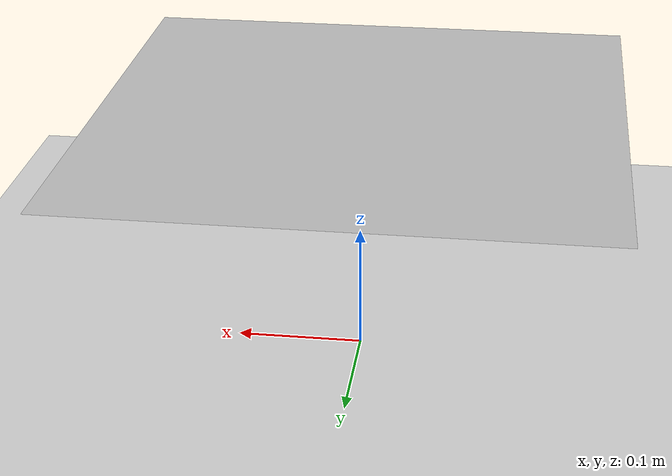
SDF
<sdf version="1.6">
  <world name="qr_platform_test_world">
    <!-- 默认地面和太阳 -->
    <include>
      <uri>model://ground_plane</uri>
    </include>
    <include>
      <uri>model://sun</uri>
    </include>

    <!-- 直接加载你的带贴图的平台 DAE -->
    <model name="qr_platform_test">
      <static>true</static>
      <!-- 把平台抬高一点，方便看见 -->
      <pose>0 0 0.2 0 0 0</pose>
      <link name="link">
        <visual name="visual">
          <geometry>
            <mesh>
              <!-- 使用我们手写的、单位为米且带贴图的简单平台模型 -->
              <uri>file://qr_platform_simple.dae</uri>
            </mesh>
          </geometry>
        </visual>
        <collision name="collision">
          <geometry>
            <!-- 与平台尺寸一致：0.5m x 0.4m x 0.001m -->
            <box>
              <size>0.5 0.4 0.001</size>
            </box>
          </geometry>
        </collision>
      </link>
    </model>
  </world>
</sdf>
